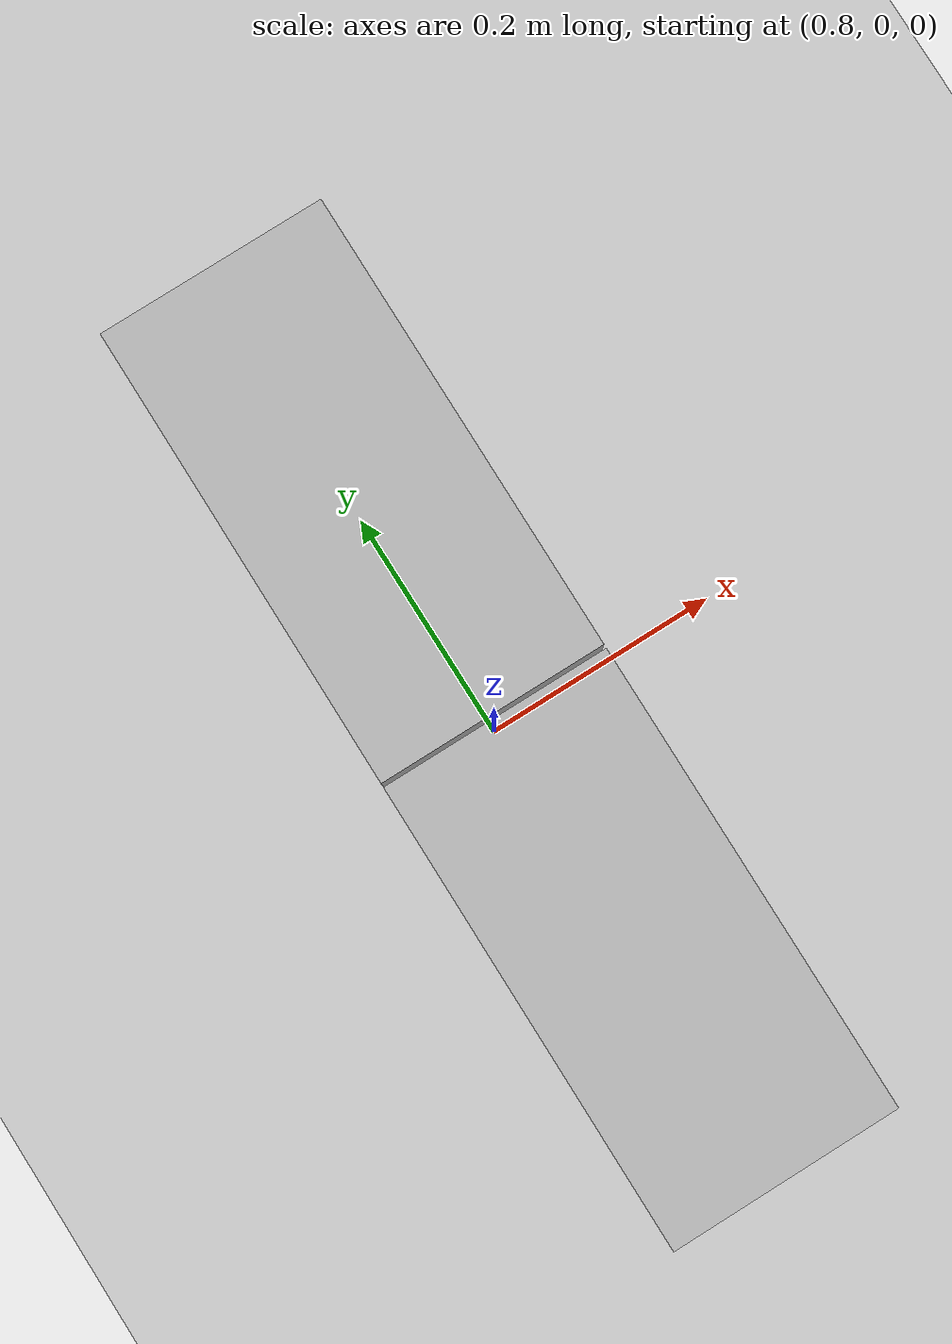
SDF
<?xml version="1.0" ?>
<sdf version="1.4">
  <world name="default">

    <gui>
      <plugin name="keyboard" filename="libKeyboardGUIPlugin.so"/>
    </gui>

    <light name='sun' type='directional'>
      <cast_shadows>1</cast_shadows>
      <pose frame=''>0 0 10 0 -0 0</pose>
      <diffuse>0.8 0.8 0.8 1</diffuse>
      <specular>0.2 0.2 0.2 1</specular>
      <attenuation>
        <range>1000</range>
        <constant>0.9</constant>
        <linear>0.01</linear>
        <quadratic>0.001</quadratic>
      </attenuation>
      <direction>-0.5 0.1 -0.9</direction>
    </light>

    <model name='ground_plane'>
      <static>1</static>
      <link name='link'>
        <collision name='collision'>
          <geometry>
            <plane>
              <normal>0 0 1</normal>
              <size>100 100</size>
            </plane>
          </geometry>
          <surface>
            <friction>
              <ode>
                <mu>100</mu>
                <mu2>50</mu2>
              </ode>
              <torsional>
                <ode/>
              </torsional>
            </friction>
            <contact>
              <ode/>
            </contact>
            <bounce/>
          </surface>
          <max_contacts>10</max_contacts>
        </collision>
        <visual name='visual'>
          <cast_shadows>0</cast_shadows>
          <geometry>
            <plane>
              <normal>0 0 1</normal>
              <size>100 100</size>
            </plane>
          </geometry>
          <material>
            <script>
              <uri>file://media/materials/scripts/gazebo.material</uri>
              <name>Gazebo/Grey</name>
            </script>
          </material>
        </visual>
        <self_collide>0</self_collide>
        <kinematic>0</kinematic>
      </link>
    </model>

    <model name='cinder_block_1'>
      <pose frame=''>0.8 -0.2 0 0 0 0</pose>
      <static>1</static>
      <link name='link'>
        <inertial>
          <pose frame=''>0 0 0.071438 0 -0 0</pose>
          <mass>5</mass>
          <inertia>
            <ixx>0.06908</ixx>
            <ixy>0</ixy>
            <iyy>0.028705</iyy>
            <ixz>0</ixz>
            <iyz>0</iyz>
            <izz>0.073708</izz>
          </inertia>
        </inertial>
        <visual name='visual'>
          <geometry>
            <mesh>
              <uri>model://cinder_block_2/meshes/cinder_block.dae</uri>
            </mesh>
          </geometry>
        </visual>
        <collision name='top'>
          <pose frame=''>0 0 0.130175 0 -0 0</pose>
          <geometry>
            <box>
              <size>0.19368 0.396875 0.0254</size>
            </box>
          </geometry>
          <surface>
            <contact>
              <ode>
                <max_vel>0.1</max_vel>
                <min_depth>0.001</min_depth>
              </ode>
            </contact>
            <friction>
              <ode>
                <mu>1</mu>
                <mu2>1</mu2>
              </ode>
              <torsional>
                <ode/>
              </torsional>
            </friction>
            <bounce/>
          </surface>
          <max_contacts>10</max_contacts>
        </collision>
        <collision name='bottom'>
          <pose frame=''>0 0 0.0127 0 -0 0</pose>
          <geometry>
            <box>
              <size>0.19368 0.396875 0.0254</size>
            </box>
          </geometry>
          <surface>
            <contact>
              <ode>
                <max_vel>0.1</max_vel>
                <min_depth>0.001</min_depth>
              </ode>
            </contact>
            <friction>
              <ode>
                <mu>1</mu>
                <mu2>1</mu2>
              </ode>
              <torsional>
                <ode/>
              </torsional>
            </friction>
            <bounce/>
          </surface>
          <max_contacts>10</max_contacts>
        </collision>
        <collision name='left'>
          <pose frame=''>0 -0.185738 0.071438 0 -0 0</pose>
          <geometry>
            <box>
              <size>0.19368 0.0254 0.092075</size>
            </box>
          </geometry>
          <surface>
            <contact>
              <ode>
                <max_vel>0.1</max_vel>
                <min_depth>0.001</min_depth>
              </ode>
            </contact>
            <friction>
              <ode>
                <mu>1</mu>
                <mu2>1</mu2>
              </ode>
              <torsional>
                <ode/>
              </torsional>
            </friction>
            <bounce/>
          </surface>
          <max_contacts>10</max_contacts>
        </collision>
        <collision name='right'>
          <pose frame=''>0 0.185738 0.071438 0 -0 0</pose>
          <geometry>
            <box>
              <size>0.19368 0.0254 0.092075</size>
            </box>
          </geometry>
          <surface>
            <contact>
              <ode>
                <max_vel>0.1</max_vel>
                <min_depth>0.001</min_depth>
              </ode>
            </contact>
            <friction>
              <ode>
                <mu>1</mu>
                <mu2>1</mu2>
              </ode>
              <torsional>
                <ode/>
              </torsional>
            </friction>
            <bounce/>
          </surface>
          <max_contacts>10</max_contacts>
        </collision>
        <collision name='middle'>
          <pose frame=''>0 0 0.071438 0 -0 0</pose>
          <geometry>
            <box>
              <size>0.19368 0.0254 0.092075</size>
            </box>
          </geometry>
          <surface>
            <contact>
              <ode>
                <max_vel>0.1</max_vel>
                <min_depth>0.001</min_depth>
              </ode>
            </contact>
            <friction>
              <ode>
                <mu>1</mu>
                <mu2>1</mu2>
              </ode>
              <torsional>
                <ode/>
              </torsional>
            </friction>
            <bounce/>
          </surface>
          <max_contacts>10</max_contacts>
        </collision>
        <self_collide>0</self_collide>
        <enable_wind>0</enable_wind>
        <kinematic>0</kinematic>
      </link>
    </model>
    <model name='cinder_block_2'>
      <pose frame=''>0.8 0.2 0 0 0 0</pose>
      <static>1</static>
      <link name='link'>
        <inertial>
          <pose frame=''>0 0 0.071438 0 -0 0</pose>
          <mass>5</mass>
          <inertia>
            <ixx>0.06908</ixx>
            <ixy>0</ixy>
            <iyy>0.028705</iyy>
            <ixz>0</ixz>
            <iyz>0</iyz>
            <izz>0.073708</izz>
          </inertia>
        </inertial>
        <visual name='visual'>
          <geometry>
            <mesh>
              <uri>model://cinder_block_2/meshes/cinder_block.dae</uri>
            </mesh>
          </geometry>
        </visual>
        <collision name='top'>
          <pose frame=''>0 0 0.130175 0 -0 0</pose>
          <geometry>
            <box>
              <size>0.19368 0.396875 0.0254</size>
            </box>
          </geometry>
          <surface>
            <contact>
              <ode>
                <max_vel>0.1</max_vel>
                <min_depth>0.001</min_depth>
              </ode>
            </contact>
            <friction>
              <ode>
                <mu>1</mu>
                <mu2>1</mu2>
              </ode>
              <torsional>
                <ode/>
              </torsional>
            </friction>
            <bounce/>
          </surface>
          <max_contacts>10</max_contacts>
        </collision>
        <collision name='bottom'>
          <pose frame=''>0 0 0.0127 0 -0 0</pose>
          <geometry>
            <box>
              <size>0.19368 0.396875 0.0254</size>
            </box>
          </geometry>
          <surface>
            <contact>
              <ode>
                <max_vel>0.1</max_vel>
                <min_depth>0.001</min_depth>
              </ode>
            </contact>
            <friction>
              <ode>
                <mu>1</mu>
                <mu2>1</mu2>
              </ode>
              <torsional>
                <ode/>
              </torsional>
            </friction>
            <bounce/>
          </surface>
          <max_contacts>10</max_contacts>
        </collision>
        <collision name='left'>
          <pose frame=''>0 -0.185738 0.071438 0 -0 0</pose>
          <geometry>
            <box>
              <size>0.19368 0.0254 0.092075</size>
            </box>
          </geometry>
          <surface>
            <contact>
              <ode>
                <max_vel>0.1</max_vel>
                <min_depth>0.001</min_depth>
              </ode>
            </contact>
            <friction>
              <ode>
                <mu>1</mu>
                <mu2>1</mu2>
              </ode>
              <torsional>
                <ode/>
              </torsional>
            </friction>
            <bounce/>
          </surface>
          <max_contacts>10</max_contacts>
        </collision>
        <collision name='right'>
          <pose frame=''>0 0.185738 0.071438 0 -0 0</pose>
          <geometry>
            <box>
              <size>0.19368 0.0254 0.092075</size>
            </box>
          </geometry>
          <surface>
            <contact>
              <ode>
                <max_vel>0.1</max_vel>
                <min_depth>0.001</min_depth>
              </ode>
            </contact>
            <friction>
              <ode>
                <mu>1</mu>
                <mu2>1</mu2>
              </ode>
              <torsional>
                <ode/>
              </torsional>
            </friction>
            <bounce/>
          </surface>
          <max_contacts>10</max_contacts>
        </collision>
        <collision name='middle'>
          <pose frame=''>0 0 0.071438 0 -0 0</pose>
          <geometry>
            <box>
              <size>0.19368 0.0254 0.092075</size>
            </box>
          </geometry>
          <surface>
            <contact>
              <ode>
                <max_vel>0.1</max_vel>
                <min_depth>0.001</min_depth>
              </ode>
            </contact>
            <friction>
              <ode>
                <mu>1</mu>
                <mu2>1</mu2>
              </ode>
              <torsional>
                <ode/>
              </torsional>
            </friction>
            <bounce/>
          </surface>
          <max_contacts>10</max_contacts>
        </collision>
        <self_collide>0</self_collide>
        <enable_wind>0</enable_wind>
        <kinematic>0</kinematic>
      </link>
    </model>

  </world>
</sdf>
